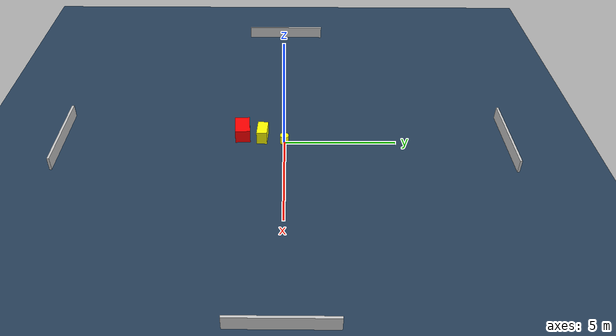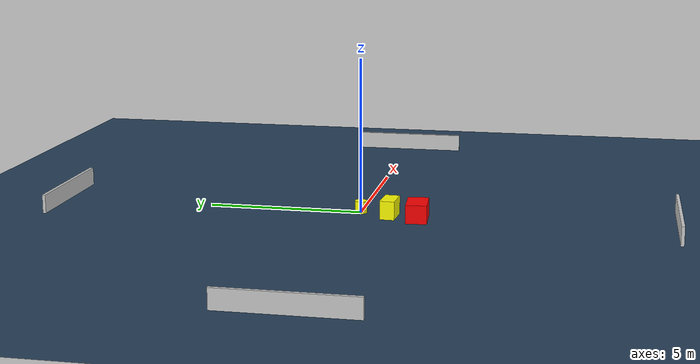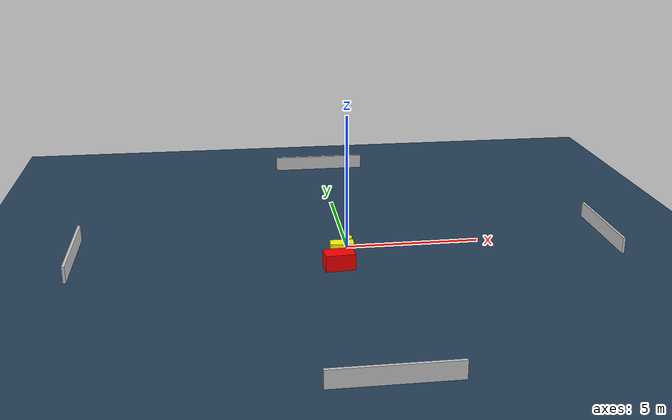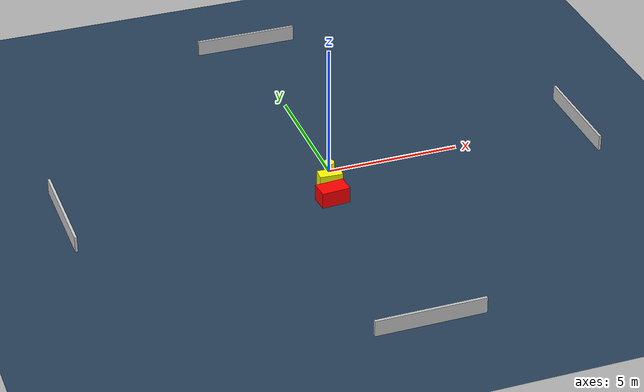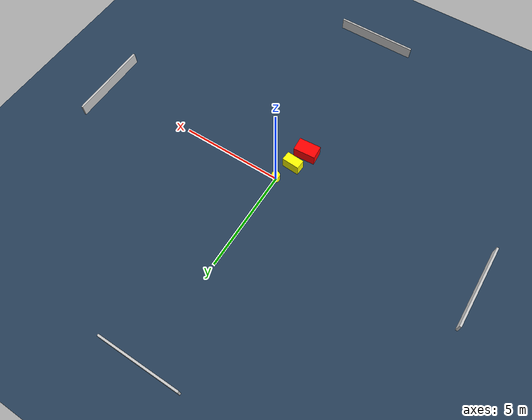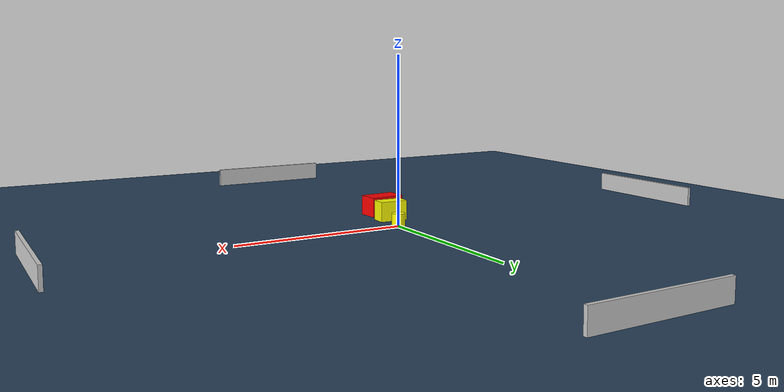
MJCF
<?xml version="1.0" ?>
<mujoco model="generated_environment">
  <option timestep="0.01" integrator="RK4" cone="elliptic"/>
  <default>
    <geom density="1"/>
  </default>
  <asset>
    <texture builtin="gradient" height="3072" name="skybox" rgb1="0.3 0.5 0.7" rgb2="0 0 0" type="skybox" width="512"/>
    <texture builtin="checker" height="300" name="groundplane" rgb1="0.2 0.3 0.4" rgb2="0.1 0.2 0.3" type="2d" width="300"/>
    <material name="groundplane" reflectance="0.2" texrepeat="5 5" texture="groundplane"/>
  </asset>
  <worldbody>
    <light dir="0 0 -1" directional="true" pos="0 0 1.5"/>
    <geom condim="3" friction="0.5 0.005 0.001" material="groundplane" name="floor" pos="0 0 0" size="0 0 0.05" type="plane"/>
    <body name="walls">
      <geom name="wall_1" condim="4" pos="-10.0 0.0 0.3" rgba="0.800000011920929 0.800000011920929 0.800000011920929 1.0" size="0.05 2.0 0.3" type="box"/>
      <geom name="wall_2" condim="4" pos="10.0 0.0 0.3" rgba="0.800000011920929 0.800000011920929 0.800000011920929 1.0" size="0.05 2.0 0.3" type="box"/>
      <geom name="wall_3" condim="4" pos="0.0 -10.0 0.3" rgba="0.800000011920929 0.800000011920929 0.800000011920929 1.0" size="2.0 0.05 0.3" type="box"/>
      <geom name="wall_4" condim="4" pos="0.0 10.0 0.3" rgba="0.800000011920929 0.800000011920929 0.800000011920929 1.0" size="2.0 0.05 0.3" type="box"/>
    </body>
    <body name="robot">
      <joint name="joint_x" type="slide" pos="0 0 0" axis="1 0 0"/>
      <joint name="joint_y" type="slide" pos="0 0 0" axis="0 1 0"/>
      <geom name="robot" type="cylinder" pos="0.0 0.0 0.2" size="0.2 0.2 0.0" mass="5.0" friction="1.0 0.005 0.0001" condim="4" rgba="1.0 1.0 0.0 1.0"/>
    </body>
    <body name="obstacle_1_movable">
      <geom name="obstacle_1_movable" condim="4" pos="-0.31822566651429957 -0.9923380148682187 0.3" euler="0 0 266.65657446244325" friction="0.0 0.005 0.001" rgba="1.0 1.0 0.0 1.0" size="0.23274482329717552 0.43032066760079485 0.3" type="box" mass="0.1"/>
      <joint type="free"/>
    </body>
    <body name="obstacle_2_static">
      <geom name="obstacle_2_static" condim="4" pos="-0.5364020775146198 -1.9095815578619892 0.3" euler="0 0 4.0801897713214075" friction="0.0 0.005 0.001" rgba="1.0 0.0 0.0 1.0" size="0.5389154458919325 0.33473855205453285 0.3" type="box"/>
    </body>
  </worldbody>
  <actuator>
    <motor name="actuator_x" joint="joint_x" gear="1" ctrlrange="-1 1"/>
    <motor name="actuator_y" joint="joint_y" gear="1" ctrlrange="-1 1"/>
  </actuator>
</mujoco>
